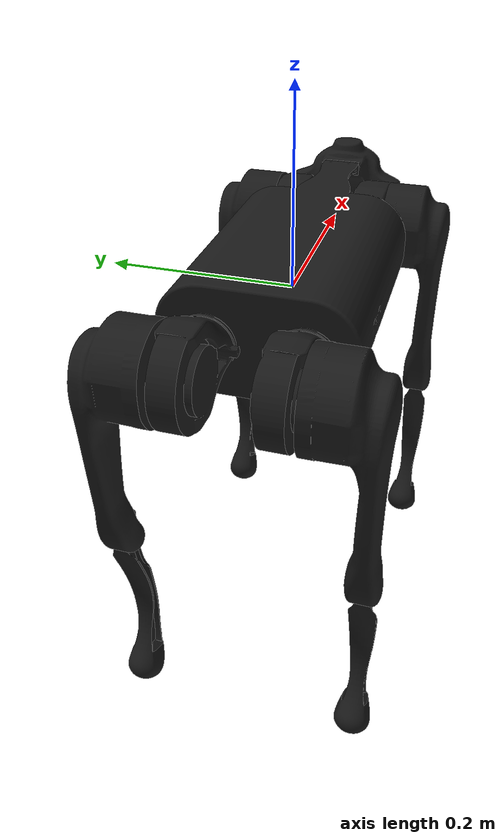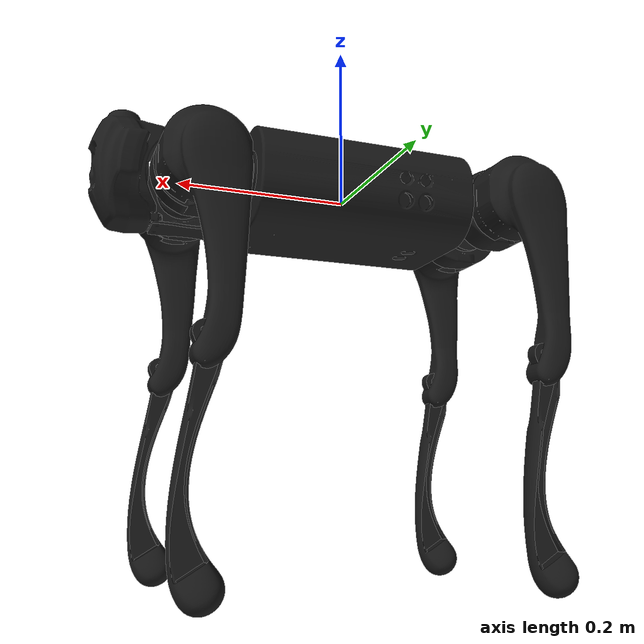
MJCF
<?xml version="1.0" ?>
<mujoco model="go1">
	<compiler meshdir="go1/meshes" texturedir="go1/textures" angle="radian" autolimits="true" balanceinertia="true" boundmass="0.000001" boundinertia="0.000001"/>
	<default>
		<default class="visual">
			<geom contype="0" conaffinity="0"/>
		</default>
		<default class="collision">
			<geom rgba="1.0 0.0 0.0 0.0"/>
		</default>
	</default>
	<asset>
		<mesh name="trunk" file="stl/trunk.stl" scale="1.0 1.0 1.0"/>
		<mesh name="hip" file="stl/hip.stl" scale="1.0 1.0 1.0"/>
		<mesh name="thigh_mirror" file="stl/thigh_mirror.stl" scale="1.0 1.0 1.0"/>
		<mesh name="calf" file="stl/calf.stl" scale="1.0 1.0 1.0"/>
		<mesh name="thigh" file="stl/thigh.stl" scale="1.0 1.0 1.0"/>
		<material name="dark" rgba="0.10000000149011612 0.10000000149011612 0.10000000149011612 1.0" emission="0.0" specular="0.5"/>
	</asset>
	<worldbody>
		<body name="go1" pos="0.0 0.0 0.0" quat="1.0 0.0 0.0 0.0">
			<body name="trunk" pos="0.0 0.0 0.0" quat="1.0 0.0 0.0 0.0">
				<geom name="Geom_0" type="mesh" pos="0.06456613540649414 -1.7892060100166418e-07 0.0008886185241863132" quat="-1.2763169934260077e-06 0.7020552754402161 1.2946187553097843e-06 0.7121224403381348" mesh="trunk" material="dark" class="visual"/>
				<geom name="Geom_1" type="box" pos="0.0 0.0 0.0" quat="1.0 0.0 0.0 0.0" size="0.125 0.03999999910593033 0.05700000002980232" class="collision"/>
				<geom name="Geom_2" type="cylinder" pos="0.0 -0.03999999910593033 0.0" quat="0.7071067690849304 0.0 0.7071067690849304 0.0" size="0.057999998331069946 0.125 0.0" class="collision"/>
				<geom name="Geom_3" type="cylinder" pos="0.0 0.03999999910593033 0.0" quat="0.7071067690849304 0.0 0.7071067690849304 0.0" size="0.057999998331069946 0.125 0.0" class="collision"/>
				<geom name="Geom_4" type="box" pos="0.25 0.0 0.0" quat="1.0 0.0 0.0 0.0" size="0.004999999888241291 0.05999999865889549 0.05000000074505806" class="collision"/>
				<geom name="Geom_5" type="capsule" pos="0.25 0.05999999865889549 -0.009999999776482582" quat="1.0 0.0 0.0 0.0" size="0.008999999612569809 0.03500000014901161 0.0" class="collision"/>
				<geom name="Geom_6" type="capsule" pos="0.25 -0.05999999865889549 -0.009999999776482582" quat="1.0 0.0 0.0 0.0" size="0.008999999612569809 0.03500000014901161 0.0" class="collision"/>
				<geom name="Geom_7" type="capsule" pos="0.25 0.0 -0.05000000074505806" quat="0.7071067690849304 0.7071067690849304 0.0 0.0" size="0.009999999776482582 0.05999999865889549 0.0" class="collision"/>
				<geom name="Geom_8" type="capsule" pos="0.2549999952316284 0.0 0.03550000116229057" quat="0.7071067690849304 0.7071067690849304 0.0 0.0" size="0.020999999716877937 0.052000001072883606 0.0" class="collision"/>
				<body name="FL_hip" pos="0.18809999525547028 0.04675000160932541 0.0" quat="1.0 0.0 0.0 0.0">
					<inertial mass="0.6800000071525574" pos="-0.004916599951684475 -0.00762614980340004 -8.864999836077914e-05" quat="0.4828909635543823 0.49502697587013245 0.5141689777374268 0.5073409676551819" diaginertia="0.0007340639713220298 0.00046843799646012485 0.0003987190139014274"/>
					<geom name="Geom_20" type="mesh" pos="-0.01287506427615881 -0.0017777803586795926 -1.960473952067332e-07" quat="0.7040685415267944 3.0720868380740285e-05 3.593841756810434e-05 0.7101320028305054" mesh="hip" material="dark" class="visual"/>
					<geom name="Geom_21" type="cylinder" pos="0.0 0.04500000178813934 0.0" quat="0.7071067690849304 0.7071067690849304 0.0 0.0" size="0.04600000008940697 0.019999999552965164 0.0" class="collision"/>
					<geom name="Geom_22" type="cylinder" pos="0.0 0.06499999761581421 0.0" quat="0.7071067690849304 0.7071067690849304 0.0 0.0" size="0.03099999949336052 0.019999999552965164 0.0" class="collision"/>
					<joint name="FL_hip_joint" type="hinge" pos="0.0 0.0 0.0" range="-0.8629999756813049 0.8629999756813049" axis="1.0 0.0 0.0"/>
					<body name="FL_thigh" pos="0.0 0.07999999821186066 0.0" quat="1.0 0.0 0.0 0.0">
						<inertial mass="1.0089999437332153" pos="-0.003047219943255186 -0.019315000623464584 -0.030500400811433792" quat="0.7533828020095825 0.07751257717609406 -0.02723129279911518 0.6524298191070557" diaginertia="0.004787169862538576 0.004609030205756426 0.00070926797343418"/>
						<geom name="Geom_23" type="mesh" pos="-0.0035736847203224897 -0.02361164800822735 -0.04103037714958191" quat="0.8039950728416443 0.08563201129436493 -0.03158499300479889 0.5875895619392395" mesh="thigh" material="dark" class="visual"/>
						<geom name="Geom_24" type="capsule" pos="-0.019999999552965164 0.0 -0.07999999821186066" quat="1.0 0.0 0.0 0.0" size="0.014999999664723873 0.07999999821186066 0.0" class="collision"/>
						<geom name="Geom_25" type="capsule" pos="-0.009999999776482582 0.0 -0.05000000074505806" quat="0.9951333403587341 0.0 0.0985376164317131 0.0" size="0.014999999664723873 0.05099019408226013 0.0" class="collision"/>
						<geom name="Geom_26" type="capsule" pos="-0.009999999776482582 0.0 -0.18000000715255737" quat="0.9732490181922913 0.0 -0.22975291311740875 0.0" size="0.014999999664723873 0.022360680624842644 0.0" class="collision"/>
						<joint name="FL_thigh_joint" type="hinge" pos="0.0 0.0 0.0" range="-0.6859999895095825 4.500999927520752" axis="0.0 1.0 0.0"/>
						<body name="FL_calf" pos="0.0 0.0 -0.21299999952316284" quat="1.0 0.0 0.0 0.0">
							<inertial mass="0.19586199522018433" pos="0.0042986199259757996 0.0009766760049387813 -0.14619700610637665" quat="0.6912462711334229 0.003574671456590295 0.0051111821085214615 0.722592294216156" diaginertia="0.00149766996037215 0.001484679989516735 3.584269870771095e-05"/>
							<geom name="Geom_27" type="mesh" pos="0.006786840967833996 -9.16954718377383e-07 -0.12472491711378098" quat="0.7070883512496948 -0.004390552639961243 -0.004400269128382206 0.7070978879928589" mesh="calf" material="dark" class="visual"/>
							<geom name="Geom_28" type="capsule" pos="0.009999999776482582 0.0 -0.06499999761581421" quat="0.9970886707305908 0.0 -0.0762505829334259 0.0" size="0.009999999776482582 0.06576473265886307 0.0" class="collision"/>
							<geom name="Geom_29" type="capsule" pos="0.009999999776482582 0.0 -0.16500000655651093" quat="0.9903342723846436 0.0 0.13870121538639069 0.0" size="0.009999999776482582 0.03640054911375046 0.0" class="collision"/>
							<geom name="FL" type="sphere" pos="0.0 0.0 -0.21299999952316284" quat="1.0 0.0 0.0 0.0" size="0.023000000044703484 0.0 0.0" class="collision"/>
							<joint name="FL_calf_joint" type="hinge" pos="0.0 0.0 0.0" range="-2.818000078201294 -0.8880000114440918" axis="0.0 1.0 0.0"/>
						</body>
					</body>
				</body>
				<body name="RR_hip" pos="-0.18809999525547028 -0.04675000160932541 0.0" quat="1.0 0.0 0.0 0.0">
					<inertial mass="0.6800000071525574" pos="0.004916599951684475 0.00762614980340004 -8.864999836077914e-05" quat="0.49502697587013245 0.4828909635543823 0.5073409676551819 0.5141689777374268" diaginertia="0.0007340639713220298 0.00046843799646012485 0.0003987190139014274"/>
					<geom name="Geom_31" type="mesh" pos="0.01287506427615881 0.0017777803586795926 -1.960473952067332e-07" quat="0.7101320028305054 3.593841756810434e-05 -3.0720868380740285e-05 -0.7040685415267944" mesh="hip" material="dark" class="visual"/>
					<geom name="Geom_32" type="cylinder" pos="0.0 -0.04500000178813934 0.0" quat="0.7071067690849304 0.7071067690849304 0.0 0.0" size="0.04600000008940697 0.019999999552965164 0.0" class="collision"/>
					<geom name="Geom_33" type="cylinder" pos="0.0 -0.06499999761581421 0.0" quat="0.7071067690849304 0.7071067690849304 0.0 0.0" size="0.03099999949336052 0.019999999552965164 0.0" class="collision"/>
					<geom name="Geom_34" type="cylinder" pos="0.0 0.0 0.0" quat="0.7071067690849304 0.7071067690849304 0.0 0.0" size="0.04600000008940697 0.019999999552965164 0.0" class="collision"/>
					<joint name="RR_hip_joint" type="hinge" pos="0.0 0.0 0.0" range="-0.8629999756813049 0.8629999756813049" axis="1.0 0.0 0.0"/>
					<body name="RR_thigh" pos="0.0 -0.07999999821186066 0.0" quat="1.0 0.0 0.0 0.0">
						<inertial mass="1.0089999437332153" pos="-0.003047219943255186 0.019315000623464584 -0.030500400811433792" quat="0.6524298191070557 -0.02723129279911518 0.07751257717609406 0.7533828020095825" diaginertia="0.004787169862538576 0.004609030205756426 0.00070926797343418"/>
						<geom name="Geom_35" type="mesh" pos="-0.004290462005883455 0.022090628743171692 -0.04642722010612488" quat="0.5726116895675659 -0.0309742484241724 0.09420688450336456 0.8138068318367004" mesh="thigh_mirror" material="dark" class="visual"/>
						<geom name="Geom_36" type="capsule" pos="-0.019999999552965164 0.0 -0.07999999821186066" quat="1.0 0.0 0.0 0.0" size="0.014999999664723873 0.07999999821186066 0.0" class="collision"/>
						<geom name="Geom_37" type="capsule" pos="-0.009999999776482582 0.0 -0.05000000074505806" quat="0.9951333403587341 0.0 0.0985376164317131 0.0" size="0.014999999664723873 0.05099019408226013 0.0" class="collision"/>
						<geom name="Geom_38" type="capsule" pos="-0.009999999776482582 0.0 -0.18000000715255737" quat="0.9732490181922913 0.0 -0.22975291311740875 0.0" size="0.014999999664723873 0.022360680624842644 0.0" class="collision"/>
						<joint name="RR_thigh_joint" type="hinge" pos="0.0 0.0 0.0" range="-0.6859999895095825 4.500999927520752" axis="0.0 1.0 0.0"/>
						<body name="RR_calf" pos="0.0 0.0 -0.21299999952316284" quat="1.0 0.0 0.0 0.0">
							<inertial mass="0.19586199522018433" pos="0.0042986199259757996 0.0009766760049387813 -0.14619700610637665" quat="0.6912462711334229 0.003574671456590295 0.0051111821085214615 0.722592294216156" diaginertia="0.00149766996037215 0.001484679989516735 3.584269870771095e-05"/>
							<geom name="Geom_39" type="mesh" pos="0.006786840967833996 -9.16954718377383e-07 -0.12472491711378098" quat="0.7070883512496948 -0.004390552639961243 -0.004400269128382206 0.7070978879928589" mesh="calf" material="dark" class="visual"/>
							<geom name="Geom_40" type="capsule" pos="0.009999999776482582 0.0 -0.06499999761581421" quat="0.9970886707305908 0.0 -0.0762505829334259 0.0" size="0.009999999776482582 0.06576473265886307 0.0" class="collision"/>
							<geom name="Geom_41" type="capsule" pos="0.009999999776482582 0.0 -0.16500000655651093" quat="0.9903342723846436 0.0 0.13870121538639069 0.0" size="0.009999999776482582 0.03640054911375046 0.0" class="collision"/>
							<geom name="RR" type="sphere" pos="0.0 0.0 -0.21299999952316284" quat="1.0 0.0 0.0 0.0" size="0.023000000044703484 0.0 0.0" class="collision"/>
							<joint name="RR_calf_joint" type="hinge" pos="0.0 0.0 0.0" range="-2.818000078201294 -0.8880000114440918" axis="0.0 1.0 0.0"/>
						</body>
					</body>
				</body>
				<body name="RL_hip" pos="-0.18809999525547028 0.04675000160932541 0.0" quat="1.0 0.0 0.0 0.0">
					<inertial mass="0.6800000071525574" pos="0.004916599951684475 -0.00762614980340004 -8.864999836077914e-05" quat="0.5141689777374268 0.5073409676551819 0.4828909635543823 0.49502697587013245" diaginertia="0.0007340639713220298 0.00046843799646012485 0.0003987190139014274"/>
					<geom name="Geom_43" type="mesh" pos="0.01287506427615881 -0.0017777803586795926 1.960473952067332e-07" quat="-3.593841756810434e-05 0.7101320028305054 0.7040685415267944 -3.0720868380740285e-05" mesh="hip" material="dark" class="visual"/>
					<geom name="Geom_44" type="cylinder" pos="0.0 0.04500000178813934 0.0" quat="0.7071067690849304 0.7071067690849304 0.0 0.0" size="0.04600000008940697 0.019999999552965164 0.0" class="collision"/>
					<geom name="Geom_45" type="cylinder" pos="0.0 0.06499999761581421 0.0" quat="0.7071067690849304 0.7071067690849304 0.0 0.0" size="0.03099999949336052 0.019999999552965164 0.0" class="collision"/>
					<geom name="Geom_46" type="cylinder" pos="0.0 0.0 0.0" quat="0.7071067690849304 0.7071067690849304 0.0 0.0" size="0.04600000008940697 0.019999999552965164 0.0" class="collision"/>
					<joint name="RL_hip_joint" type="hinge" pos="0.0 0.0 0.0" range="-0.8629999756813049 0.8629999756813049" axis="1.0 0.0 0.0"/>
					<body name="RL_thigh" pos="0.0 0.07999999821186066 0.0" quat="1.0 0.0 0.0 0.0">
						<inertial mass="1.0089999437332153" pos="-0.003047219943255186 -0.019315000623464584 -0.030500400811433792" quat="0.7533828020095825 0.07751257717609406 -0.02723129279911518 0.6524298191070557" diaginertia="0.004787169862538576 0.004609030205756426 0.00070926797343418"/>
						<geom name="Geom_47" type="mesh" pos="-0.0035736847203224897 -0.02361164800822735 -0.04103037714958191" quat="0.8039950728416443 0.08563201129436493 -0.03158499300479889 0.5875895619392395" mesh="thigh" material="dark" class="visual"/>
						<geom name="Geom_48" type="capsule" pos="-0.019999999552965164 0.0 -0.07999999821186066" quat="1.0 0.0 0.0 0.0" size="0.014999999664723873 0.07999999821186066 0.0" class="collision"/>
						<geom name="Geom_49" type="capsule" pos="-0.009999999776482582 0.0 -0.05000000074505806" quat="0.9951333403587341 0.0 0.0985376164317131 0.0" size="0.014999999664723873 0.05099019408226013 0.0" class="collision"/>
						<geom name="Geom_50" type="capsule" pos="-0.009999999776482582 0.0 -0.18000000715255737" quat="0.9732490181922913 0.0 -0.22975291311740875 0.0" size="0.014999999664723873 0.022360680624842644 0.0" class="collision"/>
						<joint name="RL_thigh_joint" type="hinge" pos="0.0 0.0 0.0" range="-0.6859999895095825 4.500999927520752" axis="0.0 1.0 0.0"/>
						<body name="RL_calf" pos="0.0 0.0 -0.21299999952316284" quat="1.0 0.0 0.0 0.0">
							<inertial mass="0.19586199522018433" pos="0.0042986199259757996 0.0009766760049387813 -0.14619700610637665" quat="0.6912462711334229 0.003574671456590295 0.0051111821085214615 0.722592294216156" diaginertia="0.00149766996037215 0.001484679989516735 3.584269870771095e-05"/>
							<geom name="Geom_51" type="mesh" pos="0.006786840967833996 -9.16954718377383e-07 -0.12472491711378098" quat="0.7070883512496948 -0.004390552639961243 -0.004400269128382206 0.7070978879928589" mesh="calf" material="dark" class="visual"/>
							<geom name="Geom_52" type="capsule" pos="0.009999999776482582 0.0 -0.06499999761581421" quat="0.9970886707305908 0.0 -0.0762505829334259 0.0" size="0.009999999776482582 0.06576473265886307 0.0" class="collision"/>
							<geom name="Geom_53" type="capsule" pos="0.009999999776482582 0.0 -0.16500000655651093" quat="0.9903342723846436 0.0 0.13870121538639069 0.0" size="0.009999999776482582 0.03640054911375046 0.0" class="collision"/>
							<geom name="RL" type="sphere" pos="0.0 0.0 -0.21299999952316284" quat="1.0 0.0 0.0 0.0" size="0.023000000044703484 0.0 0.0" class="collision"/>
							<joint name="RL_calf_joint" type="hinge" pos="0.0 0.0 0.0" range="-2.818000078201294 -0.8880000114440918" axis="0.0 1.0 0.0"/>
						</body>
					</body>
				</body>
				<body name="FR_hip" pos="0.18809999525547028 -0.04675000160932541 0.0" quat="1.0 0.0 0.0 0.0">
					<inertial mass="0.6800000071525574" pos="-0.004916599951684475 0.00762614980340004 -8.864999836077914e-05" quat="0.5073409676551819 0.5141689777374268 0.49502697587013245 0.4828909635543823" diaginertia="0.0007340639713220298 0.00046843799646012485 0.0003987190139014274"/>
					<geom name="Geom_9" type="mesh" pos="-0.01287506427615881 -0.0017777803586795926 -1.960473952067332e-07" quat="0.7040685415267944 3.0720868380740285e-05 3.593841756810434e-05 0.7101320028305054" mesh="hip" material="dark" class="visual"/>
					<geom name="Geom_10" type="cylinder" pos="0.0 -0.04500000178813934 0.0" quat="0.7071067690849304 0.7071067690849304 0.0 0.0" size="0.04600000008940697 0.019999999552965164 0.0" class="collision"/>
					<geom name="Geom_11" type="cylinder" pos="0.0 -0.06499999761581421 0.0" quat="0.7071067690849304 0.7071067690849304 0.0 0.0" size="0.03099999949336052 0.019999999552965164 0.0" class="collision"/>
					<joint name="FR_hip_joint" type="hinge" pos="0.0 0.0 0.0" range="-0.8629999756813049 0.8629999756813049" axis="1.0 0.0 0.0"/>
					<body name="FR_thigh" pos="0.0 -0.07999999821186066 0.0" quat="1.0 0.0 0.0 0.0">
						<inertial mass="1.0089999437332153" pos="-0.003047219943255186 0.019315000623464584 -0.030500400811433792" quat="0.6524298191070557 -0.02723129279911518 0.07751257717609406 0.7533828020095825" diaginertia="0.004787169862538576 0.004609030205756426 0.00070926797343418"/>
						<geom name="Geom_12" type="mesh" pos="-0.004290462005883455 0.022090628743171692 -0.04642722010612488" quat="0.5726116895675659 -0.0309742484241724 0.09420688450336456 0.8138068318367004" mesh="thigh_mirror" material="dark" class="visual"/>
						<geom name="Geom_13" type="capsule" pos="-0.019999999552965164 0.0 -0.07999999821186066" quat="1.0 0.0 0.0 0.0" size="0.014999999664723873 0.07999999821186066 0.0" class="collision"/>
						<geom name="Geom_14" type="capsule" pos="-0.009999999776482582 0.0 -0.05000000074505806" quat="0.9951333403587341 0.0 0.0985376164317131 0.0" size="0.014999999664723873 0.05099019408226013 0.0" class="collision"/>
						<geom name="Geom_15" type="capsule" pos="-0.009999999776482582 0.0 -0.18000000715255737" quat="0.9732490181922913 0.0 -0.22975291311740875 0.0" size="0.014999999664723873 0.022360680624842644 0.0" class="collision"/>
						<joint name="FR_thigh_joint" type="hinge" pos="0.0 0.0 0.0" range="-0.6859999895095825 4.500999927520752" axis="0.0 1.0 0.0"/>
						<body name="FR_calf" pos="0.0 0.0 -0.21299999952316284" quat="1.0 0.0 0.0 0.0">
							<inertial mass="0.19586199522018433" pos="0.0042986199259757996 0.0009766760049387813 -0.14619700610637665" quat="0.6912462711334229 0.003574671456590295 0.0051111821085214615 0.722592294216156" diaginertia="0.00149766996037215 0.001484679989516735 3.584269870771095e-05"/>
							<geom name="Geom_16" type="mesh" pos="0.006786840967833996 -9.16954718377383e-07 -0.12472491711378098" quat="0.7070883512496948 -0.004390552639961243 -0.004400269128382206 0.7070978879928589" mesh="calf" material="dark" class="visual"/>
							<geom name="Geom_17" type="capsule" pos="0.009999999776482582 0.0 -0.06499999761581421" quat="0.9970886707305908 0.0 -0.0762505829334259 0.0" size="0.009999999776482582 0.06576473265886307 0.0" class="collision"/>
							<geom name="Geom_18" type="capsule" pos="0.009999999776482582 0.0 -0.16500000655651093" quat="0.9903342723846436 0.0 0.13870121538639069 0.0" size="0.009999999776482582 0.03640054911375046 0.0" class="collision"/>
							<geom name="FR" type="sphere" pos="0.0 0.0 -0.21299999952316284" quat="1.0 0.0 0.0 0.0" size="0.023000000044703484 0.0 0.0" class="collision"/>
							<joint name="FR_calf_joint" type="hinge" pos="0.0 0.0 0.0" range="-2.818000078201294 -0.8880000114440918" axis="0.0 1.0 0.0"/>
						</body>
					</body>
				</body>
			</body>
		</body>
	</worldbody>
	<equality/>
</mujoco>
